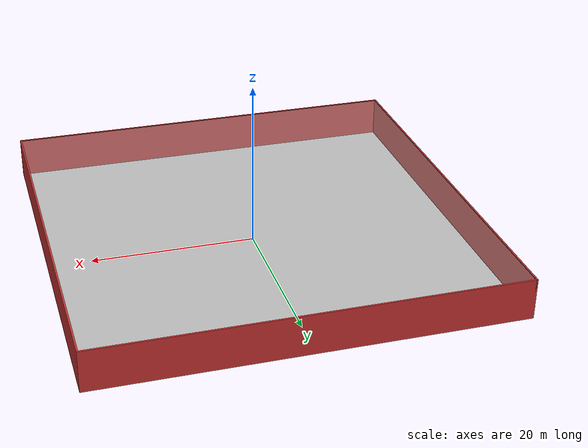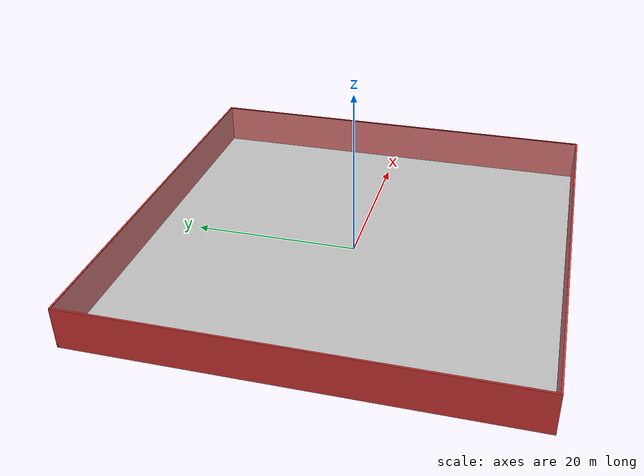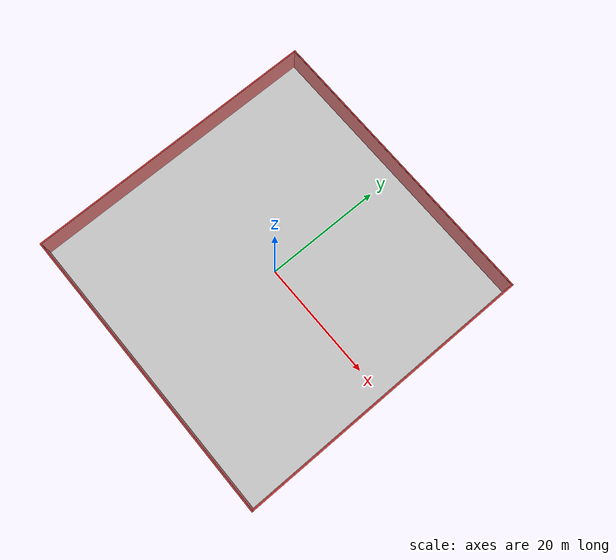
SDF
<sdf version="1.6">
  <world name="my_world">
    <!-- 物理引擎参数（保持默认） -->
    <physics name="default_physics" default="true" type="ode">
      <max_step_size>0.002</max_step_size>
      <real_time_factor>1</real_time_factor>
      <real_time_update_rate>500</real_time_update_rate>
    </physics>
    <scene>
      <ambient>0.01 0.01 0.01 1.0</ambient>
      <sky>
        <clouds>
          <speed>12</speed>
        </clouds>
      </sky>
      <shadows>1</shadows>
    </scene>

    <!-- 三亚海域地理位置 -->
    <spherical_coordinates>
      <latitude_deg>18.2528</latitude_deg>   <!-- 北纬18.2528度 -->
      <longitude_deg>109.5107</longitude_deg> <!-- 东经109.5107度 -->
    </spherical_coordinates>

    <!-- Global light source -->
    <light type="directional" name="sun1">
      <pose>50 0 150 0 0 0</pose>
      <diffuse>1 1 1 1</diffuse>
      <specular>.1 .1 .1 1</specular>
      <direction>0.3 0.3 -1</direction>
      <cast_shadows>false</cast_shadows>
    </light>

    <!-- Global light source -->
    <light type="directional" name="sun_diffuse">
      <pose>-50 0 -150 0 0 0</pose>
      <diffuse>0.6 0.6 0.6 1</diffuse>
      <specular>0 0 0 1</specular>
      <direction>-0.3 -0.3 -1</direction>
      <cast_shadows>false</cast_shadows>
    </light>

    <!-- 50x50米水域核心配置 -->
    <!-- 水面平面 -->
    <model name="water_surface">
      <static>true</static>
      <link name="link">
        <visual name="surface">
          <geometry>
            <plane>
              <size>50 50</size>       <!-- 水面尺寸 -->
            </plane>
          </geometry>
          <material>
            <script>
              <uri>file://media/materials/scripts/water.material</uri>
              <name>Ocean</name>
            </script>
          </material>
        </visual>
      </link>
      <pose>0 0 5 0 0 0</pose>        <!-- 水面位于Z=0平面 -->
    </model>

    <!-- 海底平面（水深5米） -->
    <model name="seafloor">
      <static>true</static>
      <link name="link">
        <collision name="collision">
          <geometry>
            <plane>
              <size>50 50</size>       <!-- 与水面同尺寸 -->
            </plane>
          </geometry>
        </collision>
        <visual name="visual">
          <geometry>
            <plane>
              <size>50 50</size>
            </plane>
          </geometry>
          <material>
            <script>
              <uri>file://media/materials/scripts/sand.material</uri>
            </script>
          </material>
        </visual>
      </link>
      <pose>0 0 0 0 0 0</pose>       <!-- Z=-5米位置 -->
    </model>

    <!-- 自定义围墙模型  -->
    <model name="wall_1">
      <static>true</static>
      <link name="link">
        <collision name="collision">
          <geometry>
            <box>
              <size>0.2 50.4 5</size> <!-- 长宽高 -->
            </box>
          </geometry>
        </collision>
        <visual name="visual">
          <geometry>
            <box>
              <size>0.2 50.4 5</size>
            </box>
          </geometry>
          <material>
            <ambient>0.8 0.2 0.2 1</ambient> <!-- RGBA颜色  -->
          </material>
        </visual>
      </link>
      <pose>25.1 0 2.5 0 0 0</pose> <!-- XYZ坐标+欧拉角 -->
    </model>

    <model name="wall_2">
      <static>true</static>
      <link name="link">
        <collision name="collision">
          <geometry>
            <box>
              <size>0.2 50.4 5</size> <!-- 长宽高 -->
            </box>
          </geometry>
        </collision>
        <visual name="visual">
          <geometry>
            <box>
              <size>0.2 50.4 5</size>
            </box>
          </geometry>
          <material>
            <ambient>0.8 0.2 0.2 1</ambient> <!-- RGBA颜色  -->
          </material>
        </visual>
      </link>
      <pose>-25.1 0 2.5 0 0 0</pose> <!-- XYZ坐标+欧拉角 -->
    </model>

    <model name="wall_3">
      <static>true</static>
      <link name="link">
        <collision name="collision">
          <geometry>
            <box>
              <size>50.4 0.2 5</size> <!-- 长宽高 -->
            </box>
          </geometry>
        </collision>
        <visual name="visual">
          <geometry>
            <box>
              <size>50.4 0.2 5</size>
            </box>
          </geometry>
          <material>
            <ambient>0.8 0.2 0.2 1</ambient> <!-- RGBA颜色  -->
          </material>
        </visual>
      </link>
      <pose>0 25.1 2.5 0 0 0</pose> <!-- XYZ坐标+欧拉角 -->
    </model>

    <model name="wall_4">
      <static>true</static>
      <link name="link">
        <collision name="collision">
          <geometry>
            <box>
              <size>50.4 0.2 5</size> <!-- 长宽高 -->
            </box>
          </geometry>
        </collision>
        <visual name="visual">
          <geometry>
            <box>
              <size>50.4 0.2 5</size>
            </box>
          </geometry>
          <material>
            <ambient>0.8 0.2 0.2 1</ambient> <!-- RGBA颜色  -->
          </material>
        </visual>
      </link>
      <pose>0 -25.1 2.5 0 0 0</pose> <!-- XYZ坐标+欧拉角 -->
    </model>

    <!-- 必要插件保留 -->
    <plugin name="underwater_current_plugin"
            filename="libuuv_underwater_current_ros_plugin.so">
      <constant_current>
        <velocity>
          <max>0.5</max>             <!-- 降低水流速度适应小空间 -->
        </velocity>
      </constant_current>
    </plugin>

  </world>
</sdf>
